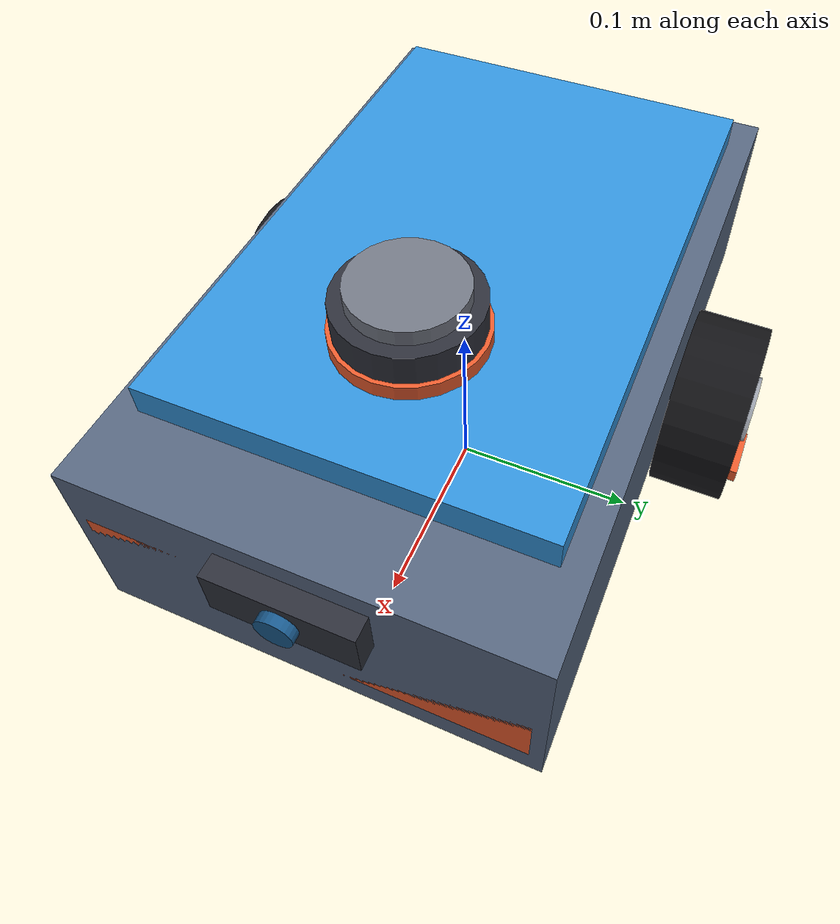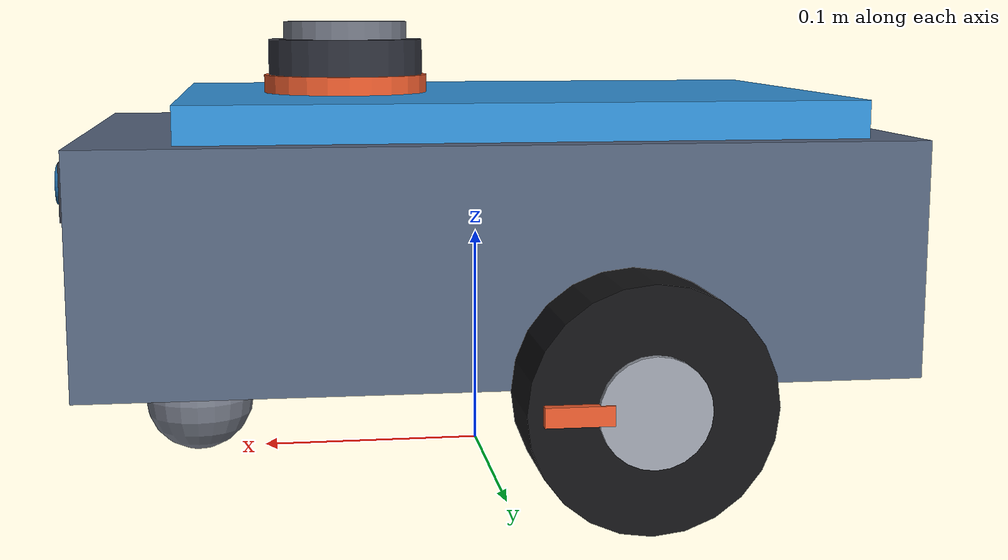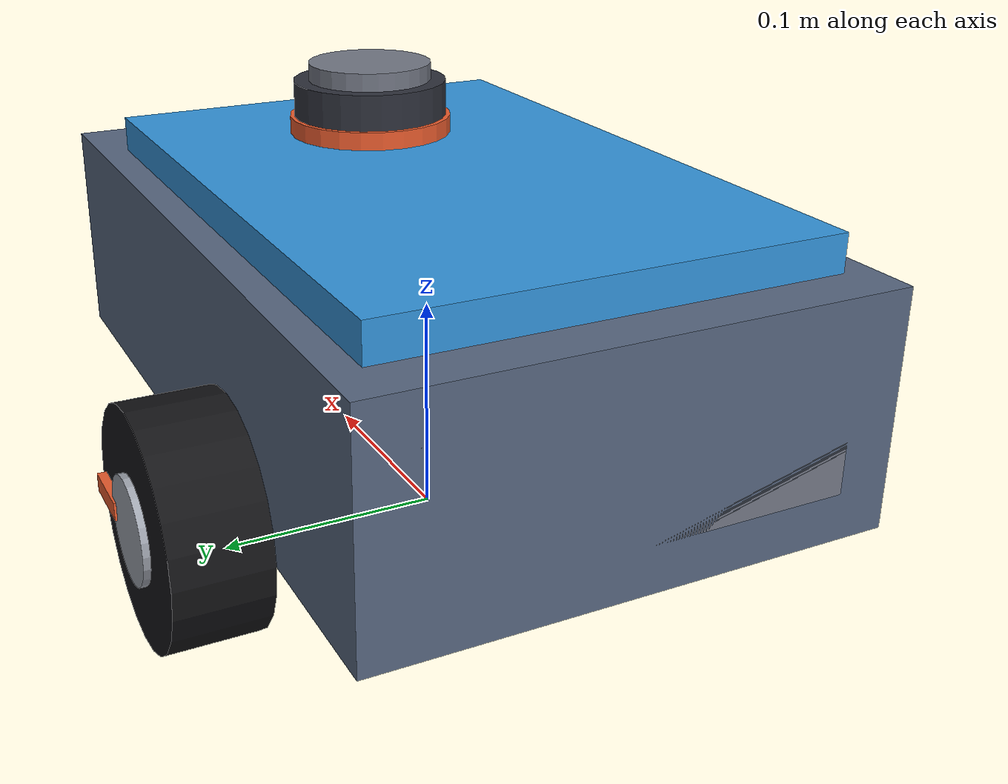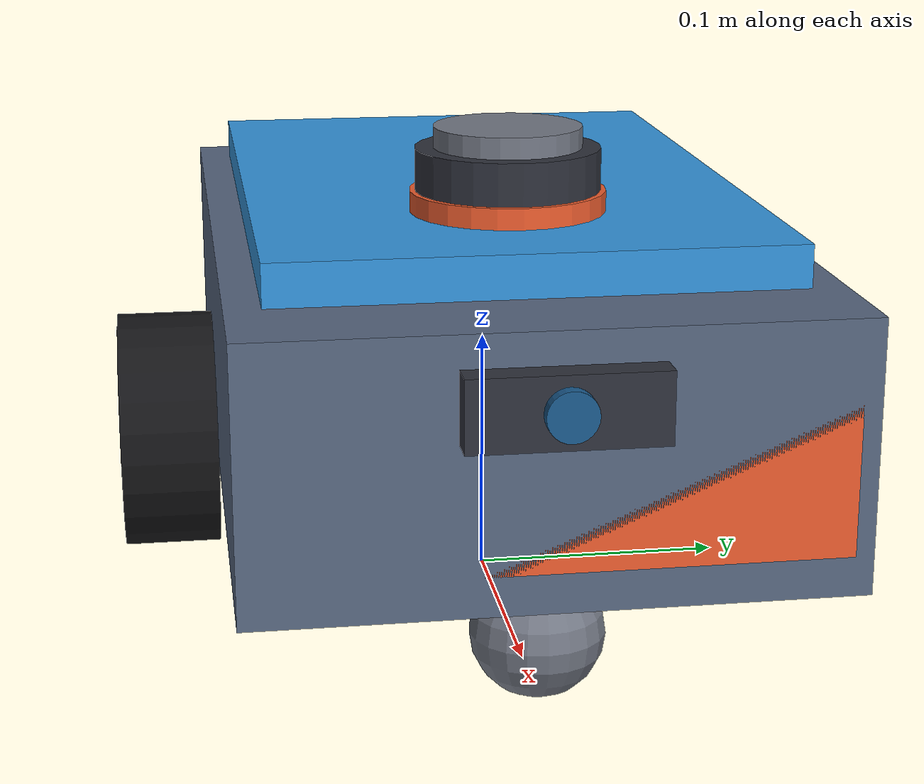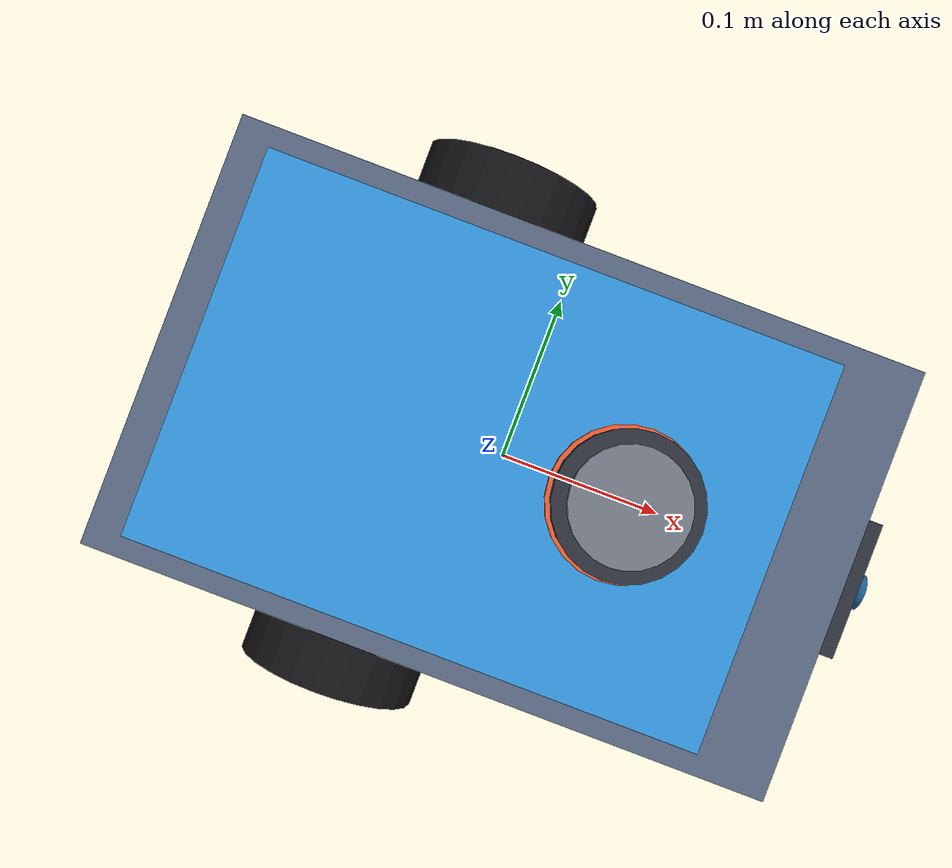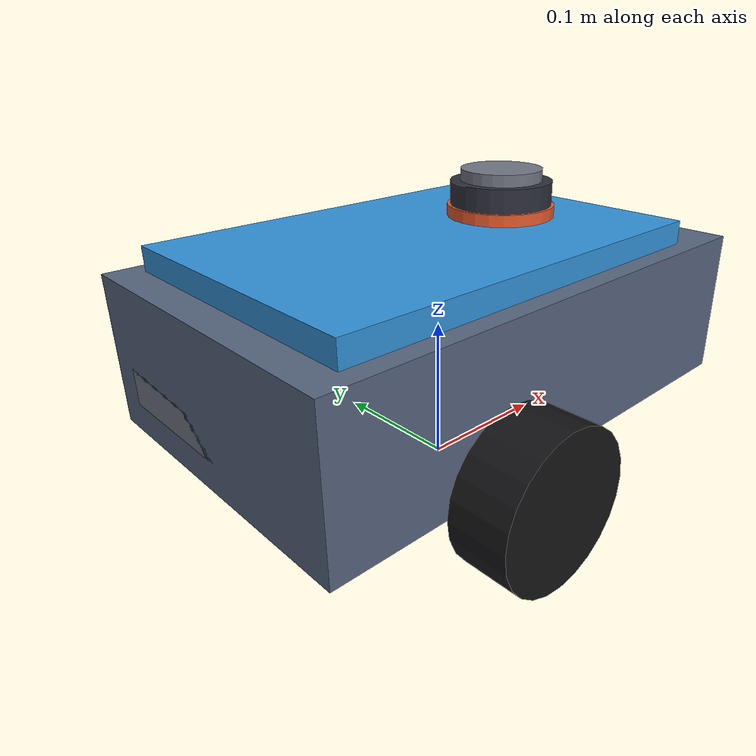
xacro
<?xml version="1.0"?>
<robot xmlns:xacro="http://www.ros.org/wiki/xacro" name="smartphone_robot">

  <xacro:include filename="inertial_macros.xacro"/>

  <xacro:property name="base_length"  value="0.35"/>   <!-- x, forward  [m] -->
  <xacro:property name="base_width"   value="0.22"/>   <!-- y, left     [m] -->
  <xacro:property name="base_height"  value="0.10"/>   <!-- z, up       [m] -->
  <xacro:property name="base_mass"    value="5.0"/>    <!-- [kg] -->

  <xacro:property name="wheel_radius"     value="0.05"/>
  <xacro:property name="wheel_width"      value="0.04"/>
  <xacro:property name="wheel_mass"       value="0.5"/>
  <xacro:property name="wheel_separation" value="0.26"/>
  <xacro:property name="wheel_x_offset"   value="-0.05"/>  <!-- wheels slightly aft -->

  <xacro:property name="caster_radius" value="0.025"/>
  <xacro:property name="caster_mass"   value="0.1"/>
  <xacro:property name="caster_x"      value="0.13"/>

  <xacro:property name="lidar_radius" value="0.035"/>
  <xacro:property name="lidar_height" value="0.04"/>
  <xacro:property name="lidar_mass"   value="0.15"/>

  <xacro:property name="PI" value="3.14159265359"/>

  <!-- ==================== Materials (RViz colours only) ================== -->
  <material name="chassis">  <color rgba="0.34 0.40 0.50 1.0"/></material>
  <material name="deck">     <color rgba="0.20 0.58 0.86 1.0"/></material>
  <material name="tyre">     <color rgba="0.08 0.08 0.09 1.0"/></material>
  <material name="hub">      <color rgba="0.62 0.64 0.68 1.0"/></material>
  <material name="grey">     <color rgba="0.45 0.47 0.52 1.0"/></material>
  <material name="sensor">   <color rgba="0.18 0.19 0.23 1.0"/></material>
  <material name="lens">     <color rgba="0.10 0.35 0.55 1.0"/></material>
  <material name="marker">   <color rgba="0.92 0.36 0.18 1.0"/></material>
  <material name="white">    <color rgba="0.88 0.89 0.92 1.0"/></material>

  <link name="base_footprint"/>

  <!-- ==================== base_link (chassis) ============================ -->
  <joint name="base_joint" type="fixed">
    <parent link="base_footprint"/>
    <child  link="base_link"/>
    <!-- Lift base_link so the wheel axles (at base_link z=0) sit one wheel radius
         above the ground. -->
    <origin xyz="0 0 ${wheel_radius}" rpy="0 0 0"/>
  </joint>

  <link name="base_link">
    <visual name="chassis">
      <origin xyz="0 0 ${base_height/2}" rpy="0 0 0"/>
      <geometry>
        <box size="${base_length} ${base_width} ${base_height}"/>
      </geometry>
      <material name="chassis"/>
    </visual>
    <visual name="deck">
      <origin xyz="-0.01 0 ${base_height + 0.008}" rpy="0 0 0"/>
      <geometry>
        <box size="${base_length*0.82} ${base_width*0.88} 0.016"/>
      </geometry>
      <material name="deck"/>
    </visual>
    <visual name="front_bumper">
      <origin xyz="${base_length/2 - 0.012} 0 ${base_height*0.42}" rpy="0 0 0"/>
      <geometry>
        <box size="0.024 ${base_width*0.94} ${base_height*0.55}"/>
      </geometry>
      <material name="marker"/>
    </visual>
    <visual name="rear_panel">
      <origin xyz="${-base_length/2 + 0.010} 0 ${base_height*0.5}" rpy="0 0 0"/>
      <geometry>
        <box size="0.020 ${base_width*0.80} ${base_height*0.6}"/>
      </geometry>
      <material name="grey"/>
    </visual>
    <collision>
      <origin xyz="0 0 ${base_height/2}" rpy="0 0 0"/>
      <geometry>
        <box size="${base_length} ${base_width} ${base_height}"/>
      </geometry>
    </collision>
    <xacro:inertial_box mass="${base_mass}"
                        x="${base_length}" y="${base_width}" z="${base_height}">
      <origin xyz="0 0 ${base_height/2}" rpy="0 0 0"/>
    </xacro:inertial_box>
  </link>

  <xacro:macro name="drive_wheel" params="prefix reflect">
    <joint name="${prefix}_wheel_joint" type="continuous">
      <parent link="base_link"/>
      <child  link="${prefix}_wheel_link"/>
      <origin xyz="${wheel_x_offset} ${reflect * wheel_separation/2} 0"
              rpy="${-PI/2} 0 0"/>
      <!-- Rotation axis expressed in the CHILD frame. After the -90 deg roll above,
           the cylinder's own z points sideways, so spinning about z rolls the wheel. -->
      <axis xyz="0 0 1"/>
    </joint>

    <link name="${prefix}_wheel_link">
      <visual name="tyre">
        <geometry>
          <cylinder radius="${wheel_radius}" length="${wheel_width}"/>
        </geometry>
        <material name="tyre"/>
      </visual>
      <visual name="hub">
        <origin xyz="0 0 ${wheel_width/2 + 0.001}" rpy="0 0 0"/>
        <geometry>
          <cylinder radius="${wheel_radius*0.45}" length="0.004"/>
        </geometry>
        <material name="hub"/>
      </visual>
      <visual name="spoke">
        <origin xyz="${wheel_radius*0.6} 0 ${wheel_width/2 + 0.002}" rpy="0 0 0"/>
        <geometry>
          <box size="${wheel_radius*0.55} 0.008 0.004"/>
        </geometry>
        <material name="marker"/>
      </visual>
      <collision>
        <geometry>
          <cylinder radius="${wheel_radius}" length="${wheel_width}"/>
        </geometry>
      </collision>
      <xacro:inertial_cylinder mass="${wheel_mass}"
                               radius="${wheel_radius}" length="${wheel_width}">
        <origin xyz="0 0 0" rpy="0 0 0"/>
      </xacro:inertial_cylinder>
    </link>
  </xacro:macro>

  <xacro:drive_wheel prefix="left"  reflect="1"/>
  <xacro:drive_wheel prefix="right" reflect="-1"/>

  <joint name="caster_joint" type="fixed">
    <parent link="base_link"/>
    <child  link="caster_link"/>
    <origin xyz="${caster_x} 0 ${-(wheel_radius - caster_radius)}" rpy="0 0 0"/>
  </joint>

  <link name="caster_link">
    <visual>
      <geometry><sphere radius="${caster_radius}"/></geometry>
      <material name="grey"/>
    </visual>
    <collision>
      <geometry><sphere radius="${caster_radius}"/></geometry>
    </collision>
    <xacro:inertial_sphere mass="${caster_mass}" radius="${caster_radius}">
      <origin xyz="0 0 0" rpy="0 0 0"/>
    </xacro:inertial_sphere>
  </link>

  <joint name="lidar_joint" type="fixed">
    <parent link="base_link"/>
    <child  link="lidar_link"/>
    <origin xyz="0.06 0 ${base_height + lidar_height/2}" rpy="0 0 0"/>
  </joint>

  <link name="lidar_link">
    <visual name="lidar_body">
      <geometry>
        <cylinder radius="${lidar_radius}" length="${lidar_height}"/>
      </geometry>
      <material name="sensor"/>
    </visual>
    <visual name="scan_band">
      <origin xyz="0 0 0" rpy="0 0 0"/>
      <geometry>
        <cylinder radius="${lidar_radius*1.06}" length="0.008"/>
      </geometry>
      <material name="marker"/>
    </visual>
    <visual name="lidar_cap">
      <origin xyz="0 0 ${lidar_height/2 + 0.004}" rpy="0 0 0"/>
      <geometry>
        <cylinder radius="${lidar_radius*0.8}" length="0.008"/>
      </geometry>
      <material name="grey"/>
    </visual>
    <collision>
      <geometry>
        <cylinder radius="${lidar_radius}" length="${lidar_height}"/>
      </geometry>
    </collision>
    <xacro:inertial_cylinder mass="${lidar_mass}"
                             radius="${lidar_radius}" length="${lidar_height}">
      <origin xyz="0 0 0" rpy="0 0 0"/>
    </xacro:inertial_cylinder>
  </link>

  <joint name="camera_joint" type="fixed">
    <parent link="base_link"/>
    <child  link="camera_link"/>
    <origin xyz="${base_length/2} 0 ${base_height*0.75}" rpy="0 0 0"/>
  </joint>

  <link name="camera_link">
    <visual name="camera_housing">
      <geometry><box size="0.022 0.070 0.026"/></geometry>
      <material name="sensor"/>
    </visual>
    <visual name="camera_lens">
      <origin xyz="0.013 0 0" rpy="0 ${PI/2} 0"/>
      <geometry><cylinder radius="0.009" length="0.006"/></geometry>
      <material name="lens"/>
    </visual>
    <collision>
      <geometry><box size="0.02 0.06 0.02"/></geometry>
    </collision>
    <xacro:inertial_box mass="0.05" x="0.02" y="0.06" z="0.02">
      <origin xyz="0 0 0" rpy="0 0 0"/>
    </xacro:inertial_box>
  </link>

  <joint name="camera_optical_joint" type="fixed">
    <parent link="camera_link"/>
    <child  link="camera_optical_link"/>
    <origin xyz="0 0 0" rpy="${-PI/2} 0 ${-PI/2}"/>
  </joint>
  <link name="camera_optical_link"/>

  <joint name="imu_joint" type="fixed">
    <parent link="base_link"/>
    <child  link="imu_link"/>
    <origin xyz="0 0 ${base_height/2}" rpy="0 0 0"/>
  </joint>
  <link name="imu_link"/>

  <xacro:include filename="gazebo.xacro"/>

</robot>

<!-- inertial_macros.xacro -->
<robot xmlns:xacro="http://www.ros.org/wiki/xacro">

  <!-- Solid box of dimensions x*y*z. -->
  <xacro:macro name="inertial_box" params="mass x y z *origin">
    <inertial>
      <xacro:insert_block name="origin"/>
      <mass value="${mass}"/>
      <inertia ixx="${(mass/12.0)*(y*y + z*z)}" ixy="0.0" ixz="0.0"
               iyy="${(mass/12.0)*(x*x + z*z)}" iyz="0.0"
               izz="${(mass/12.0)*(x*x + y*y)}"/>
    </inertial>
  </xacro:macro>

  <!-- Solid cylinder, symmetry axis along the link's own Z. -->
  <xacro:macro name="inertial_cylinder" params="mass radius length *origin">
    <inertial>
      <xacro:insert_block name="origin"/>
      <mass value="${mass}"/>
      <inertia ixx="${(mass/12.0)*(3*radius*radius + length*length)}" ixy="0.0" ixz="0.0"
               iyy="${(mass/12.0)*(3*radius*radius + length*length)}" iyz="0.0"
               izz="${(mass/2.0)*radius*radius}"/>
    </inertial>
  </xacro:macro>

  <!-- Solid sphere. -->
  <xacro:macro name="inertial_sphere" params="mass radius *origin">
    <inertial>
      <xacro:insert_block name="origin"/>
      <mass value="${mass}"/>
      <inertia ixx="${(2.0/5.0)*mass*radius*radius}" ixy="0.0" ixz="0.0"
               iyy="${(2.0/5.0)*mass*radius*radius}" iyz="0.0"
               izz="${(2.0/5.0)*mass*radius*radius}"/>
    </inertial>
  </xacro:macro>

</robot>
